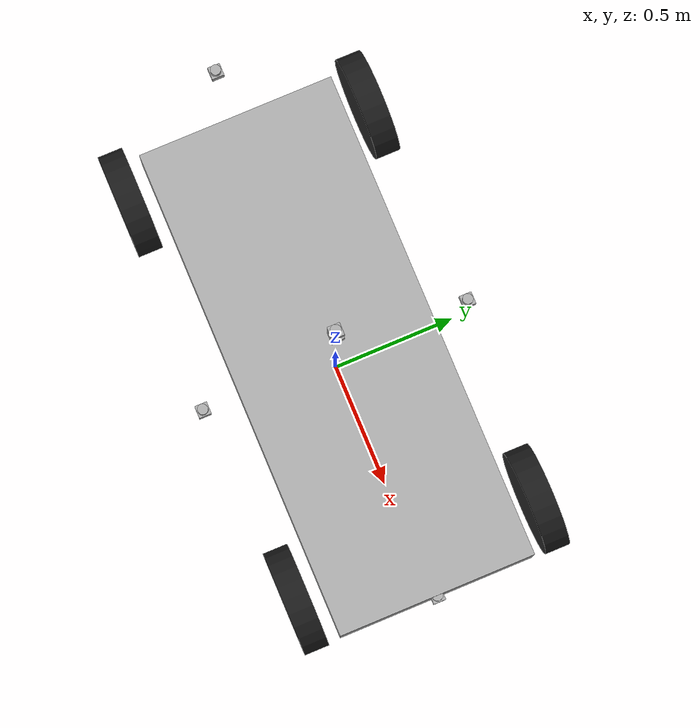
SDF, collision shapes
<?xml version="1.0" ?>
<sdf version="1.4">

    <model name="car">
        <!-- CHASSIS -->
        <link name="chassis">
            <pose>0 0 0.35 0 0 0</pose>
            <inertial>
                <mass>100.0</mass>
            </inertial>
            <collision name="chassis_collision">
                <geometry>
                    <box><size>2.0 0.8 0.2</size></box>
                </geometry>
            </collision>
            <visual name="chassis_visual">
              <pose>0.1 0 -0.2 0 -0 1.57079</pose>
                <geometry>
                    <mesh>
                        <uri>models/sdcCar/cooper-test.dae</uri>
                    </mesh>
                </geometry>
            </visual>
        </link>

        <!-- FRONT LEFT WHEEL -->
        <link name="front_left_wheel">
            <inertial>
                <mass>10.0</mass>
            </inertial>
            <pose>0.8 0.5 0.3 0 1.57079 1.57079</pose>
            <collision name="front_left_wheel_collision">
                <geometry>
                    <cylinder><radius>0.21</radius><length>0.1</length></cylinder>
                </geometry>
            </collision>
            <visual name="front_left_wheel_visual">
                <geometry>
                  <mesh>
                    <uri>models/sdcCar/wheel.stl</uri>
                  </mesh>
                </geometry>
                <material>
                    <script>
                        <uri>file://media/materials/scripts/gazebo.material</uri>
                        <name>Gazebo/Black</name>
                    </script>
                </material>
            </visual>
        </link>

        <!-- FRONT RIGHT WHEEL -->
        <link name="front_right_wheel">
            <pose>0.8 -0.5 0.3 0 1.57079 -1.57079</pose>
            <inertial>
                <mass>10.0</mass>
            </inertial>
            <collision name="front_right_wheel_collision">
                <geometry>
                    <cylinder><radius>0.21</radius><length>0.1</length></cylinder>
                </geometry>
            </collision>
            <visual name="front_right_wheel_visual">
                <geometry>
                  <mesh>
                    <uri>models/sdcCar/wheel.stl</uri>
                  </mesh>
                </geometry>
                <material>
                    <script>
                        <uri>file://media/materials/scripts/gazebo.material</uri>
                        <name>Gazebo/Black</name>
                    </script>
                </material>
            </visual>
        </link>

        <!-- BACK RIGHT WHEEL -->
        <link name="back_right_wheel">
            <pose>-0.87 -0.5 0.3 0 1.57079 -1.57079</pose>
            <inertial>
                <mass>10.0</mass>
            </inertial>
            <collision name="back_right_wheel_collision">
                <geometry>
                    <cylinder><radius>0.21</radius><length>0.1</length></cylinder>
                </geometry>
            </collision>
            <visual name="back_right_wheel_visual">
                <geometry>
                  <mesh>
                    <uri>models/sdcCar/wheel.stl</uri>
                  </mesh>
                </geometry>
                <material>
                    <script>
                        <uri>file://media/materials/scripts/gazebo.material</uri>
                        <name>Gazebo/Black</name>
                    </script>
                </material>
            </visual>
        </link>

        <!-- BACK LEFT WHEEL -->
        <link name="back_left_wheel">
            <pose>-0.87 0.5 0.3 0 1.57079 1.57079</pose>
            <inertial>
                <mass>10.0</mass>
            </inertial>
            <collision name="back_left_wheel_collision">
                <geometry>
                    <cylinder><radius>0.21</radius><length>0.1</length></cylinder>
                </geometry>
            </collision>
            <visual name="back_left_wheel_visual">
                <geometry>
                  <mesh>
                    <uri>models/sdcCar/wheel.stl</uri>
                  </mesh>
                </geometry>
                <material>
                    <script>
                        <uri>file://media/materials/scripts/gazebo.material</uri>
                        <name>Gazebo/Black</name>
                    </script>
                </material>
            </visual>
        </link>

        <!-- JOINT BETWEEN THE FRONT LEFT WHEEL AND CAR -->
        <joint type="revolute2" name="front_left_joint">
            <parent>chassis</parent>
            <child>front_left_wheel</child>
            <axis>
                <xyz>0 0 1</xyz>
                <limit>
                    <lower>0</lower>
                    <upper>0</upper>
                </limit>
            </axis>
            <axis2>
                <xyz>0 1 0</xyz>
            </axis2>
            <physics>
                <ode>
                    <limit>
                        <cfm>0.0</cfm>
                        <erp>0.9</erp>
                    </limit>
                    <suspension>
                        <cfm>0.01</cfm>
                        <erp>0.15</erp>
                    </suspension>
                </ode>
            </physics>
        </joint>

        <!-- JOINT BETWEEN THE FRONT RIGHT WHEEL AND CAR -->
        <joint type="revolute2" name="front_right_joint">
            <parent>chassis</parent>
            <child>front_right_wheel</child>
            <axis>
                <xyz>0 0 1</xyz>
                <limit>
                    <lower>0</lower>
                    <upper>0</upper>
                </limit>
            </axis>
            <axis2>
                <xyz>0 1 0</xyz>
            </axis2>
            <physics>
                <ode>
                    <limit>
                        <cfm>0.0</cfm>
                        <erp>0.9</erp>
                    </limit>
                    <suspension>
                        <cfm>0.01</cfm>
                        <erp>0.15</erp>
                    </suspension>
                </ode>
            </physics>
        </joint>

        <!-- JOINT BETWEEN THE BACK RIGHT WHEEL AND CAR -->
        <joint type="revolute2" name="back_right_joint">
            <parent>chassis</parent>
            <child>back_right_wheel</child>
            <axis>
                <xyz>0 0 1</xyz>
                <limit>
                    <lower>0</lower>
                    <upper>0</upper>
                </limit>
            </axis>
            <axis2>
                <xyz>0 1 0</xyz>
            </axis2>
            <physics>
                <ode>
                    <limit>
                        <cfm>0.0</cfm>
                        <erp>0.9</erp>
                    </limit>
                    <suspension>
                        <cfm>0.01</cfm>
                        <erp>0.15</erp>
                    </suspension>
                </ode>
            </physics>
        </joint>

        <!-- JOINT BETWEEN THE BACK LEFT WHEEL AND CAR -->
        <joint type="revolute2" name="back_left_joint">
            <parent>chassis</parent>
            <child>back_left_wheel</child>
            <axis><xyz>0 0 1</xyz>
                <limit>
                    <lower>0</lower>
                    <upper>0</upper>
                </limit>
            </axis>
            <axis2>
                <xyz>0 1 0</xyz>
            </axis2>
            <physics>
                <ode>
                    <limit>
                        <cfm>0.0</cfm>
                        <erp>0.9</erp>
                    </limit>
                    <suspension>
                        <cfm>0.01</cfm>
                        <erp>0.15</erp>
                    </suspension>
                </ode>
            </physics>
        </joint>

          <!-- FRONT LASER SENSOR -->
        <link name="front_lidar">
              <pose>1.0 0 0.4 0 0 0</pose>
              <visual name="front_lidar_visual">
                  <geometry>
                      <mesh>
                          <uri>model://hokuyo/meshes/hokuyo.dae</uri>
                      </mesh>
                  </geometry>
              </visual>
              <collision name="front_lidar_collision-base">
                  <pose>0 0 -0.0145 0 0 0</pose>
                  <geometry>
                      <box>
                          <size>0.05 0.05 0.041</size>
                      </box>
                  </geometry>
              </collision>
              <collision name="front_lidar_collision-top">
                  <pose>0 0 0.0205 0 0 0</pose>
                  <geometry>
                      <cylinder>
                          <radius>0.021</radius>
                          <length>0.029</length>
                      </cylinder>
                  </geometry>
              </collision>
              <sensor name="front_lidar" type="ray">
                  <pose>0.01 0 0.0175 0 -0 0</pose>
                  <ray>
                      <scan>
                          <horizontal>
                              <samples>640</samples>
                              <resolution>1</resolution>
                              <min_angle>-1.39626</min_angle>
                              <max_angle>1.39626</max_angle>
                          </horizontal>
                      </scan>
                      <range>
                          <min>0.08</min>
                          <max>20</max>
                          <resolution>0.01</resolution>
                      </range>
                  </ray>
                  <plugin name="sdcFrontLidarSensor" filename="build/libsdcFrontLidarSensor.so" />
                  <always_on>1</always_on>
                  <update_rate>30</update_rate>
                  <visualize>1</visualize>
              </sensor>
            </link>

        <!-- JOINT BETWEEN THE FRONT LASER SENSOR AND CAR -->
        <joint name="front_lidar_joint" type="revolute">
            <child>front_lidar</child>
            <parent>chassis</parent>
            <axis>
                <xyz>0 0 1</xyz>
                <limit>
                    <upper>0</upper>
                    <lower>0</lower>
                </limit>
            </axis>
        </joint>

        <!-- BACK LASER SENSOR -->
      <link name="back_lidar">
            <pose>-1.2 0 0.4 0 0 0</pose>
            <visual name="back_lidar_visual">
                <geometry>
                    <mesh>
                        <uri>model://hokuyo/meshes/hokuyo.dae</uri>
                    </mesh>
                </geometry>
            </visual>
            <collision name="back_lidar_collision-base">
                <pose>0 0 -0.0145 0 0 0</pose>
                <geometry>
                    <box>
                        <size>0.05 0.05 0.041</size>
                    </box>
                </geometry>
            </collision>
            <collision name="back_lidar_collision-top">
                <pose>0 0 0.0205 0 0 0</pose>
                <geometry>
                    <cylinder>
                        <radius>0.021</radius>
                        <length>0.029</length>
                    </cylinder>
                </geometry>
            </collision>
            <sensor name="back_lidar" type="ray">
                <pose>0.01 0 0.0175 0 3.1459 0</pose>
                <ray>
                    <scan>
                        <horizontal>
                            <samples>120</samples>
                            <resolution>1</resolution>
                            <min_angle>-1.5709</min_angle>
                            <max_angle>1.5709</max_angle>
                        </horizontal>
                    </scan>
                    <range>
                        <min>0.08</min>
                        <max>10</max>
                        <resolution>0.01</resolution>
                    </range>
                </ray>
                <plugin name="sdcBackLidarSensor" filename="build/libsdcBackLidarSensor.so" />
                <always_on>1</always_on>
                <update_rate>30</update_rate>
                <visualize>0</visualize>
            </sensor>
          </link>

      <!-- JOINT BETWEEN THE BACK LASER SENSOR AND CAR -->
      <joint name="back_lidar_joint" type="revolute">
          <child>back_lidar</child>
          <parent>chassis</parent>
          <axis>
              <xyz>0 0 1</xyz>
              <limit>
                  <upper>0</upper>
                  <lower>0</lower>
              </limit>
          </axis>
      </joint>

        <!-- TOP LASER SENSOR -->
        <link name="top_laser">
            <pose>0.0 0 1.1 0.0 0.0 0.0</pose>
            <visual name="top_laser_visual">
                <geometry>
                    <mesh>
                        <uri>model://hokuyo/meshes/hokuyo.dae</uri>
                    </mesh>
                </geometry>
            </visual>
            <collision name="top_laser_collision-base">
                <pose>0 0 -0.0145 0 0 0</pose>
                <geometry>
                    <box>
                        <size>0.05 0.05 0.041</size>
                    </box>
                </geometry>
            </collision>
            <collision name="top_laser_collision-top">
                <pose>0 0 0.0205 0 0 0</pose>
                <geometry>
                    <cylinder>
                        <radius>0.021</radius>
                        <length>0.029</length>
                    </cylinder>
                </geometry>
            </collision>
            <sensor name="top_left_laser" type="ray">
                <pose>0.01 0 0.0175 0 0.18 1.5708</pose>
                <ray>
                    <scan>
                        <horizontal>
                            <samples>160</samples>
                            <resolution>1</resolution>
                            <min_angle>-0.7854</min_angle>
                            <max_angle>0.7854</max_angle>
                        </horizontal>
                    </scan>
                    <range>
                        <min>0.08</min>
                        <max>20</max>
                        <resolution>0.01</resolution>
                    </range>
                </ray>
                <plugin name="sdcTopLidarSensor" filename="build/libsdcTopLidarSensor.so" />
                <always_on>1</always_on>
                <update_rate>30</update_rate>
                <visualize>false</visualize>
            </sensor>
            <sensor name="top_forward_laser" type="ray">
                <pose>0.01 0 0.0175 0 0.18 0</pose>
                <ray>
                    <scan>
                        <horizontal>
                            <samples>160</samples>
                            <resolution>1</resolution>
                            <min_angle>-0.7854</min_angle>
                            <max_angle>0.7854</max_angle>
                        </horizontal>
                    </scan>
                    <range>
                        <min>0.08</min>
                        <max>20</max>
                        <resolution>0.01</resolution>
                    </range>
                </ray>
                <plugin name="sdcTopLidarSensor" filename="build/libsdcTopLidarSensor.so" />
                <always_on>1</always_on>
                <update_rate>30</update_rate>
                <visualize>false</visualize>
            </sensor>
            <sensor name="top_backward_laser" type="ray">
                <pose>0.01 0 0.0175 0 0.18 3.14159</pose>
                <ray>
                    <scan>
                        <horizontal>
                            <samples>160</samples>
                            <resolution>1</resolution>
                            <min_angle>-0.7854</min_angle>
                            <max_angle>0.7854</max_angle>
                        </horizontal>
                    </scan>
                    <range>
                        <min>0.08</min>
                        <max>20</max>
                        <resolution>0.01</resolution>
                    </range>
                </ray>
                <plugin name="sdcTopLidarSensor" filename="build/libsdcTopLidarSensor.so" />
                <always_on>1</always_on>
                <update_rate>30</update_rate>
                <visualize>false</visualize>
            </sensor>
            <sensor name="top_right_laser" type="ray">
                <pose>0.01 0 0.0175 0 0.18 -1.5708</pose>
                <ray>
                    <scan>
                        <horizontal>
                            <samples>160</samples>
                            <resolution>1</resolution>
                            <min_angle>-0.7854</min_angle>
                            <max_angle>0.7854</max_angle>
                        </horizontal>
                    </scan>
                    <range>
                        <min>0.08</min>
                        <max>20</max>
                        <resolution>0.01</resolution>
                    </range>
                </ray>
                <plugin name="sdcTopLidarSensor" filename="build/libsdcTopLidarSensor.so" />
                <always_on>1</always_on>
                <update_rate>30</update_rate>
                <visualize>false</visualize>
            </sensor>
        </link>

        <!-- JOINT BETWEEN THE TOP LASER SENSOR AND CAR -->
        <joint name="top_laser_joint" type="revolute">
            <child>top_laser</child>
            <parent>chassis</parent>
            <axis>
                <xyz>0 0 1</xyz>
                <limit>
                    <upper>0</upper>
                    <lower>0</lower>
                </limit>
            </axis>
        </joint>

        <!-- SIDE SENSORS (PSEUDO-RADAR) -->
        <link name="side_right_sensors">
            <pose>0.0 -0.55 0.4 0.0 0.0 0.0</pose>
            <visual name="side_right_sensors_visual">
                <geometry>
                    <mesh>
                        <uri>model://hokuyo/meshes/hokuyo.dae</uri>
                    </mesh>
                </geometry>
            </visual>
            <collision name="side_right_sensors_collision-base">
                <pose>0 0 -0.0145 0 0 0</pose>
                <geometry>
                    <box>
                        <size>0.05 0.05 0.041</size>
                    </box>
                </geometry>
            </collision>
            <collision name="side_right_sensors_collision-top">
                <pose>0 0 0.0205 0 0 0</pose>
                <geometry>
                    <cylinder>
                        <radius>0.021</radius>
                        <length>0.029</length>
                    </cylinder>
                </geometry>
            </collision>
            <sensor name="side_right_front_laser" type="ray">
                <pose>0.4 -0.02 0.0 0 0.0 -1.5708</pose>
                <ray>
                    <scan>
                        <horizontal>
                            <samples>160</samples>
                            <resolution>1</resolution>
                            <min_angle>-1.3</min_angle>
                            <max_angle>1.3</max_angle>
                        </horizontal>
                    </scan>
                    <range>
                        <min>0.08</min>
                        <max>11.0</max>
                        <resolution>0.01</resolution>
                    </range>
                </ray>
                <plugin name="sdcSideLidarSensor" filename="build/libsdcSideLidarSensor.so" />
                <always_on>1</always_on>
                <update_rate>30</update_rate>
                <visualize>1</visualize>
            </sensor>
            <sensor name="side_right_back_laser" type="ray">
                <pose>-0.6 -0.02 0.0 0 0.0 -1.5708</pose>
                <ray>
                    <scan>
                        <horizontal>
                            <samples>160</samples>
                            <resolution>1</resolution>
                            <min_angle>-1.3</min_angle>
                            <max_angle>1.3</max_angle>
                        </horizontal>
                    </scan>
                    <range>
                        <min>0.08</min>
                        <max>1.0</max>
                        <resolution>0.01</resolution>
                    </range>
                </ray>
                <plugin name="sdcSideLidarSensor" filename="build/libsdcSideLidarSensor.so" />
                <always_on>1</always_on>
                <update_rate>30</update_rate>
                <visualize>0</visualize>
            </sensor>
        </link>

        <joint name="side_right_sensor_joint" type="revolute">
            <child>side_right_sensors</child>
            <parent>chassis</parent>
            <axis>
                <xyz>0 0 1</xyz>
                <limit>
                    <upper>0</upper>
                    <lower>0</lower>
                </limit>
            </axis>
        </joint>

        <link name="side_left_sensors">
            <pose>0.0 0.55 0.4 0.0 0.0 0.0</pose>
            <visual name="side_left_sensors_visual">
                <geometry>
                    <mesh>
                        <uri>model://hokuyo/meshes/hokuyo.dae</uri>
                    </mesh>
                </geometry>
            </visual>
            <collision name="side_left_sensors_collision-base">
                <pose>0 0 -0.0145 0 0 0</pose>
                <geometry>
                    <box>
                        <size>0.05 0.05 0.041</size>
                    </box>
                </geometry>
            </collision>
            <collision name="side_left_sensors_collision-top">
                <pose>0 0 0.0205 0 0 0</pose>
                <geometry>
                    <cylinder>
                        <radius>0.021</radius>
                        <length>0.029</length>
                    </cylinder>
                </geometry>
            </collision>
            <sensor name="side_left_front_laser" type="ray">
                <pose>0.4 0.02 0.0 0 0.0 1.5708</pose>
                <ray>
                    <scan>
                        <horizontal>
                            <samples>160</samples>
                            <resolution>1</resolution>
                            <min_angle>-1.3</min_angle>
                            <max_angle>1.3</max_angle>
                        </horizontal>
                    </scan>
                    <range>
                        <min>0.08</min>
                        <max>11.0</max>
                        <resolution>0.01</resolution>
                    </range>
                </ray>
                <plugin name="sdcSideLidarSensor" filename="build/libsdcSideLidarSensor.so" />
                <always_on>1</always_on>
                <update_rate>30</update_rate>
                <visualize>1</visualize>
            </sensor>
            <sensor name="side_left_back_laser" type="ray">
                <pose>-0.6 0.02 0.0 0 0.0 1.5708</pose>
                <ray>
                    <scan>
                        <horizontal>
                            <samples>160</samples>
                            <resolution>1</resolution>
                            <min_angle>-1.3</min_angle>
                            <max_angle>1.3</max_angle>
                        </horizontal>
                    </scan>
                    <range>
                        <min>0.08</min>
                        <max>1.0</max>
                        <resolution>0.01</resolution>
                    </range>
                </ray>
                <plugin name="sdcSideLidarSensor" filename="build/libsdcSideLidarSensor.so" />
                <always_on>1</always_on>
                <update_rate>30</update_rate>
                <visualize>0</visualize>
            </sensor>
        </link>

        <!-- JOINT BETWEEN THE TOP LASER SENSOR AND CAR -->
        <joint name="side_left_sensor_joint" type="revolute">
            <child>side_left_sensors</child>
            <parent>chassis</parent>
            <axis>
                <xyz>0 0 1</xyz>
                <limit>
                    <upper>0</upper>
                    <lower>0</lower>
                </limit>
            </axis>
        </joint>

        <!-- END SIDE SENSORS -->

        <!-- CAMERA -->
        <link name='camera::link'>
              <pose>0.65 0 0.85 0 0.008 0</pose>

              <self_collide>0</self_collide>
              <kinematic>0</kinematic>

              <sensor name='camera' type='multicamera'>
                <always_on>1</always_on>
                <update_rate>24</update_rate>
                <visualize>1</visualize>
                <topic>comps_car_camera</topic>

                <camera name="left">
                  <pose>0 0 0 0 0 0</pose>
                  <horizontal_fov>1.047</horizontal_fov>
                  <image>
                    <width>640</width>
                    <height>480</height>
                  </image>
                  <clip>
                    <near>0.1</near>
                    <far>150</far>
                  </clip>
                  <save enabled="False">
                   <path>/Users/selfcar/Desktop/Self-Driving-Comps/comps_camera_recordings/</path>
                  </save>
                </camera>

                <plugin name="sdcCameraSensor" filename="build/libsdcCameraSensor.so" />

              </sensor>

              <visual name='visual'>
                <geometry>
                  <box>
                    <size>0.1 0.1 0.1</size>
                  </box>
                </geometry>
                <material>
                  <shader type='pixel'/>
                </material>
                <pose>0 0 0 0 -0 0</pose>
                <cast_shadows>1</cast_shadows>
                <transparency>0</transparency>
              </visual>
        </link>

        <!-- JOINT BETWEEN CAMERA SENSOR AND CAR -->
        <joint name='camera' type='revolute'>
          <parent>chassis</parent>
          <child>camera::link</child>
          <axis>
            <xyz>0 0 1</xyz>
            <use_parent_model_frame>0</use_parent_model_frame>
            <limit>
              <lower>0</lower>
              <upper>0</upper>
              <effort>-1</effort>
              <velocity>-1</velocity>
            </limit>
            <dynamics>
              <spring_reference>0</spring_reference>
              <spring_stiffness>0</spring_stiffness>
              <damping>0</damping>
              <friction>0</friction>
            </dynamics>
          </axis>
          <physics>
            <ode>
              <limit>
                <cfm>0</cfm>
                <erp>0.2</erp>
              </limit>
              <suspension>
                <cfm>0</cfm>
                <erp>0.2</erp>
              </suspension>
            </ode>
          </physics>
        </joint>

        <!-- GPS SENSOR -->
        <link name="gps">
            <pose>0.0 0.0 1.0 0 0 0</pose>
            <visual name="visual">
                <geometry>
                    <mesh>
                        <uri>model://hokuyo/meshes/hokuyo.dae</uri>
                    </mesh>
                </geometry>
            </visual>
            <collision name="gps_collision-base">
                <pose>0 0 -0.0145 0 0 0</pose>
                <geometry>
                    <box>
                        <size>0.05 0.05 0.041</size>
                    </box>
                </geometry>
            </collision>
            <collision name="gps_collision-top">
                <pose>0 0 0.0205 0 0 0</pose>
                <geometry>
                    <cylinder>
                        <radius>0.021</radius>
                        <length>0.029</length>
                    </cylinder>
                </geometry>
            </collision>
            <sensor name="gps" type="gps">
                <pose>0.0 0 0.0 0 0 0</pose>
                <always_on>1</always_on>
                <update_rate>30</update_rate>
            </sensor>
        </link>

        <!-- JOINT BETWEEN GPS SENSOR AND CAR -->
        <joint name="gps_joint" type="revolute">
            <child>gps</child>
            <parent>chassis</parent>
            <axis>
                <xyz>0 0 1</xyz>
                <limit>
                    <upper>0</upper>
                    <lower>0</lower>
                </limit>
            </axis>
        </joint>

        <!-- PLUGINS FOR THE CAR; ESSENTIALLY THE "BRAINS" OF THE CAR -->
        <plugin filename="build/libsdcCar.so" name="sdcCar">
            <!-- Joints for each wheel -->
            <front_left>front_left_joint</front_left>
            <front_right>front_right_joint</front_right>
            <back_left>back_left_joint</back_left>
            <back_right>back_right_joint</back_right>
            <!-- This is the chassis -->
            <chassis>chassis</chassis>
            <camera>camera::link</camera>
            <frontLidar>front_lidar</frontLidar>
            <rightSideLidar>side_right_sensors</rightSideLidar>
            <leftSideLidar>side_left_sensors</leftSideLidar>
            <!-- Radius of the wheel (DO NOT CHANGE UNLESS YOU ALSO CHANGE THE ACTUAL PARAMETER ABOVE PLS) -->
            <wheel_radius>0.21</wheel_radius>
            <!-- Power is multiplied by "gas" to determine force applied to wheels -->
            <front_power>10</front_power>
            <rear_power>10</rear_power>
            <!-- The angle range the front tires can turn for steering, in radians -->
            <tire_angle_range>0.5</tire_angle_range>
            <!-- Maximum speed for the car in meters/second -->
            <max_speed>10</max_speed>
            <!-- Factor for the down-force applied as the car travels faster -->
            <!-- A larger number increases the down force -->
            <aero_load>1.0</aero_load>
        </plugin>

        <plugin name="sdcGpsSensor" filename="build/libsdcGpsSensor.so">
            <gps>gps</gps>
        </plugin>
    </model>
</sdf>
